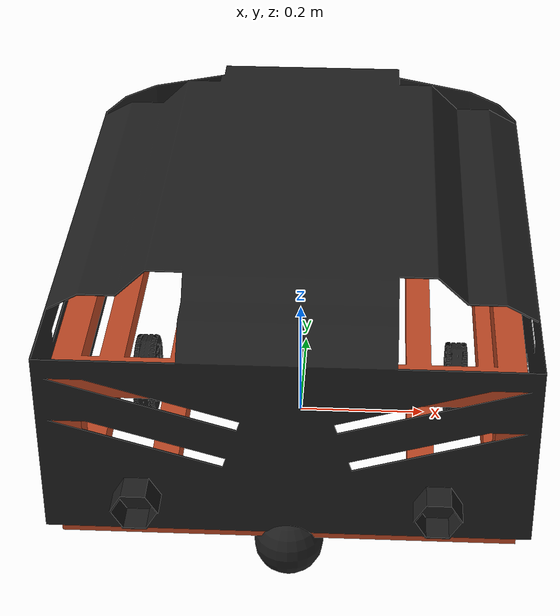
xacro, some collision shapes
<?xml version="1.0" ?>
<robot name="new_robot" xmlns:xacro="http://ros.org/wiki/xacro">
  <xacro:include filename="$(find yeni_arac_desc)/urdf/yeni_arac.gazebo.xacro"/>

  <link name="base_footprint"/>
  <material name="dark_orange">
        <color rgba="0.741 0.282 0.1411 1.0"/>
  </material>

  <joint name="base_joint" type="fixed">
    <parent link="base_footprint"/>
    <child link="base_link"/>
    <origin xyz="0 0 0.085" rpy="0 0 0"/>
  </joint>

  <link name="base_link">
    <visual>
      <origin xyz="0 0 0.0" rpy="0 0 1.57"/>
      <geometry>
        <mesh filename="package://yeni_arac_desc/meshes/chassis/sase.stl" scale="0.001 0.001 0.001"/>
      </geometry>
      <material name="dark_orange"/>

    </visual>

    <collision>
      <origin xyz="0 0.04 0.047" rpy="0 0 0"/>
      <geometry>
        <box size="0.64 0.94 0.085"/>

      </geometry>
    </collision>

    <inertial>
      <origin xyz="0 0 0" rpy="0 0 0"/>
      <mass value="1.3729096e+00"/>
      <inertia ixx="8.7002718e-03" ixy="-4.7576583e-05" ixz="1.1160499e-04"
               iyy="8.6195418e-03" iyz="-3.5422299e-06"
               izz="1.4612727e-02" />
    </inertial>
  </link>

  <joint name="caster_back_joint" type="fixed">
    <parent link="base_link"/>
    <child link="caster_back_link"/>
    <origin xyz="0.0 -0.37 -0.043" rpy="0 0 0"/>
  </joint>

  <link name="caster_back_link">
    <visual>
      <origin xyz="0 0.001 0" rpy="0 0 0"/>
      <geometry>
        <sphere radius="0.05"/>
      </geometry>
    </visual>

    <collision>
      <origin xyz="0 0.001 0" rpy="0 0 0"/>
      <geometry>
        <sphere radius="0.05"/>
      </geometry>
    </collision>

    <inertial>
      <origin xyz="0 0 0" />
      <mass value="0.005" />
      <inertia ixx="0.001" ixy="0.0" ixz="0.0"
               iyy="0.001" iyz="0.0"
               izz="0.001" />
    </inertial>
  </link>

  <joint name="caster_forward_joint" type="fixed">
    <parent link="base_link"/>
    <child link="caster_forward_link"/>
    <origin xyz="0.0 0.37 -0.043" rpy="0 0 0"/>
  </joint>

  <link name="caster_forward_link">
    <visual>
      <origin xyz="0 0.001 0" rpy="0 0 0"/>
      <geometry>
        <sphere radius="0.05"/>
      </geometry>
    </visual>

    <collision>
      <origin xyz="0 0.001 0" rpy="0 0 0"/>
      <geometry>
        <sphere radius="0.05"/>
      </geometry>
    </collision>

    <inertial>
      <origin xyz="0 0 0" />
      <mass value="0.005" />
      <inertia ixx="0.001" ixy="0.0" ixz="0.0"
               iyy="0.001" iyz="0.0"
               izz="0.001" />
    </inertial>
  </link>

  <joint name="wheel_left_joint" type="continuous">
    <parent link="base_link"/>
    <child link="wheel_left_link"/>
    <origin xyz="-0.25 0.0 -0.02" rpy="-1.57 0 1.57"/>
    <axis xyz="0 0 1"/>
  </joint>

  <link name="wheel_left_link">
    <visual>
      <origin xyz="0 0 0" rpy="1.57 0 0"/>
      <geometry>
        <mesh filename="package://yeni_arac_desc/meshes/wheels/left_tire.stl" scale="0.001 0.001 0.001"/>
      </geometry>
      <material name="dark"/>
    </visual>

    <collision>
      <origin xyz="0 0 0" rpy="0 0 0"/>
      <geometry>
        <cylinder length="0.036" radius="0.075"/>
      </geometry>
    </collision>

    <inertial>
      <origin xyz="0 0 0" />
      <mass value="2.8498940e-02" />
      <inertia ixx="1.1175580e-05" ixy="-4.2369783e-11" ixz="-5.9381719e-09"
               iyy="1.1192413e-05" iyz="-1.4400107e-11"
               izz="2.0712558e-05" />
      </inertial>
  </link>

  <joint name="wheel_right_joint" type="continuous">
    <parent link="base_link"/>
    <child link="wheel_right_link"/>
    <origin xyz="0.25 0.0 -0.02" rpy="-1.57 0 1.57"/>
    <axis xyz="0 0 1"/>
  </joint>

  <link name="wheel_right_link">
    <visual>
      <origin xyz="0 0 0" rpy="1.57 0 0"/>
      <geometry>
        <mesh filename="package://yeni_arac_desc/meshes/wheels/right_tire.stl" scale="0.001 0.001 0.001"/>
      </geometry>
      <material name="dark"/>
    </visual>

    <collision>
      <origin xyz="0 0 0" rpy="0 0 0"/>
      <geometry>
        <cylinder length="0.036" radius="0.075"/>
      </geometry>
    </collision>

    <inertial>
      <origin xyz="0 0 0" />
      <mass value="2.8498940e-02" />
      <inertia ixx="1.1175580e-05" ixy="-4.2369783e-11" ixz="-5.9381719e-09"
               iyy="1.1192413e-05" iyz="-1.4400107e-11"
               izz="2.0712558e-05" />
      </inertial>
  </link>

  <joint name="shell_joint" type="fixed">
    <parent link="base_link"/>
    <child link="shell_link"/>
    <origin xyz="0 0 0.0" rpy="0 0 0"/>
  </joint>

  <link name="shell_link">
    <visual>
      <origin xyz="0 0 0.0" rpy="0 0 1.57"/>
      <geometry>
        <mesh filename="package://yeni_arac_desc/meshes/chassis/kabuk.stl" scale="0.001 0.001 0.001"/>
      </geometry>
      <material name="light_black"/>
    </visual>

    <collision>
      <origin xyz="0 0 0.0" rpy="0 0 1.57"/>
      <geometry>
        <mesh filename="package://yeni_arac_desc/meshes/chassis/kabuk.stl" scale="0.001 0.001 0.001"/>
      </geometry>
    </collision>

    <inertial>
      <origin xyz="0 0 0" rpy="0 0 0"/>
      <mass value="1.3729096e+00"/>
      <inertia ixx="8.7002718e-03" ixy="-4.7576583e-05" ixz="1.1160499e-04"
               iyy="8.6195418e-03" iyz="-3.5422299e-06"
               izz="1.4612727e-02" />
    </inertial>
  </link>

  <joint name="scan_joint" type="fixed">
    <parent link="base_link"/>
    <child link="base_scan"/>
    <origin xyz="0.0 0.37 0.30" rpy="0 0 0"/>
  </joint>

  <link name="base_scan">
    <visual>
      <origin xyz="0 0 0.0" rpy="0 0 0"/>
      <geometry>
        <mesh filename="package://turtlebot3_description/meshes/sensors/lds.stl" scale="0.001 0.001 0.001"/>
      </geometry>
      <material name="dark"/>
    </visual>

    <collision>
      <origin xyz="0.015 0 -0.0065" rpy="0 0 0"/>
      <geometry>
        <cylinder length="0.0315" radius="0.055"/>
      </geometry>
    </collision>

    <inertial>
      <mass value="0.114" />
      <origin xyz="0 0 0" />
      <inertia ixx="0.001" ixy="0.0" ixz="0.0"
               iyy="0.001" iyz="0.0"
               izz="0.001" />
    </inertial>
  </link>

  <joint name="camera_joint" type="fixed">
    <origin xyz="0.0 0.48 0.25" rpy="0.0 0.7853 1.57"/>
    <parent link="base_link"/>
    <child link="camera_link"/>
  </joint>

  <link name="camera_link">
    <visual>
      <origin xyz="0.0 0.0 0.0" rpy="0 0 0"/>
      <geometry>
        <box size="0.015 0.030 0.027"/>
      </geometry>
    </visual>

    <collision>
      <origin xyz="0.005 0.011 0.013" rpy="0 0 0"/>
      <geometry>
        <box size="0.015 0.030 0.027"/>
      </geometry>
    </collision>
  </link>

  <joint name="camera_rgb_joint" type="fixed">
    <origin xyz="0.003 0.011 0.009" rpy="0 0 0"/>
    <parent link="camera_link"/>
    <child link="camera_rgb_frame"/>
  </joint>
  <link name="camera_rgb_frame"/>

  <joint name="camera_rgb_optical_joint" type="fixed">
    <origin xyz="0 0 0" rpy="-1.57 0 -1.57"/>
    <parent link="camera_rgb_frame"/>
    <child link="camera_rgb_optical_frame"/>
  </joint>
  <link name="camera_rgb_optical_frame"/>

</robot>
